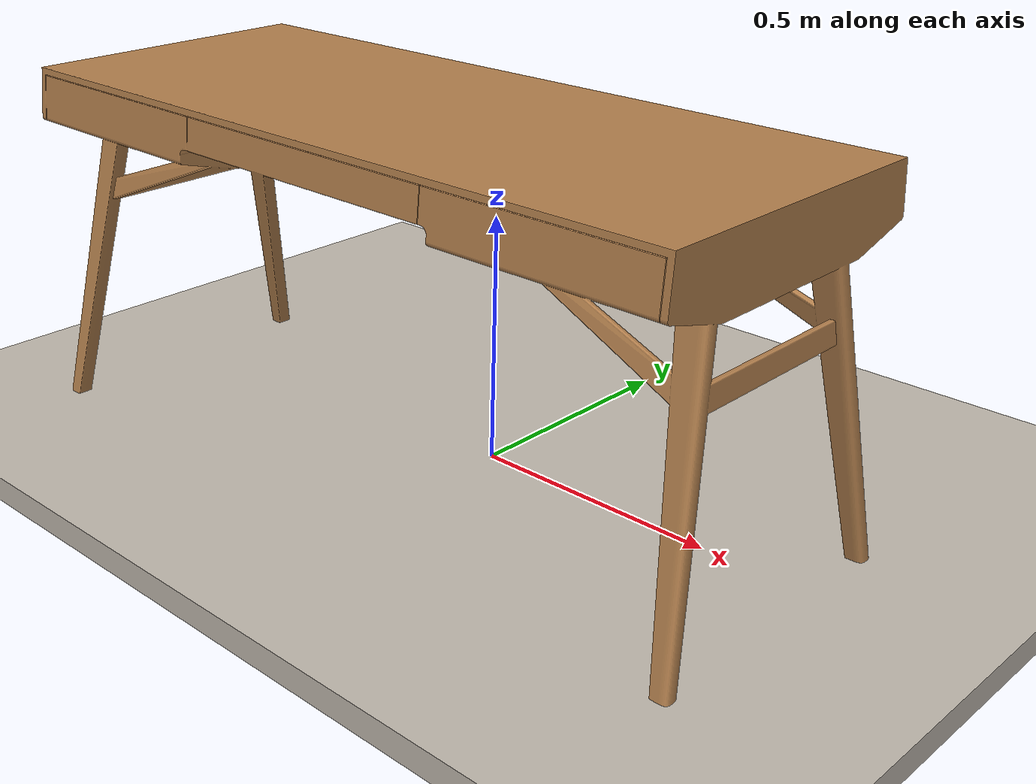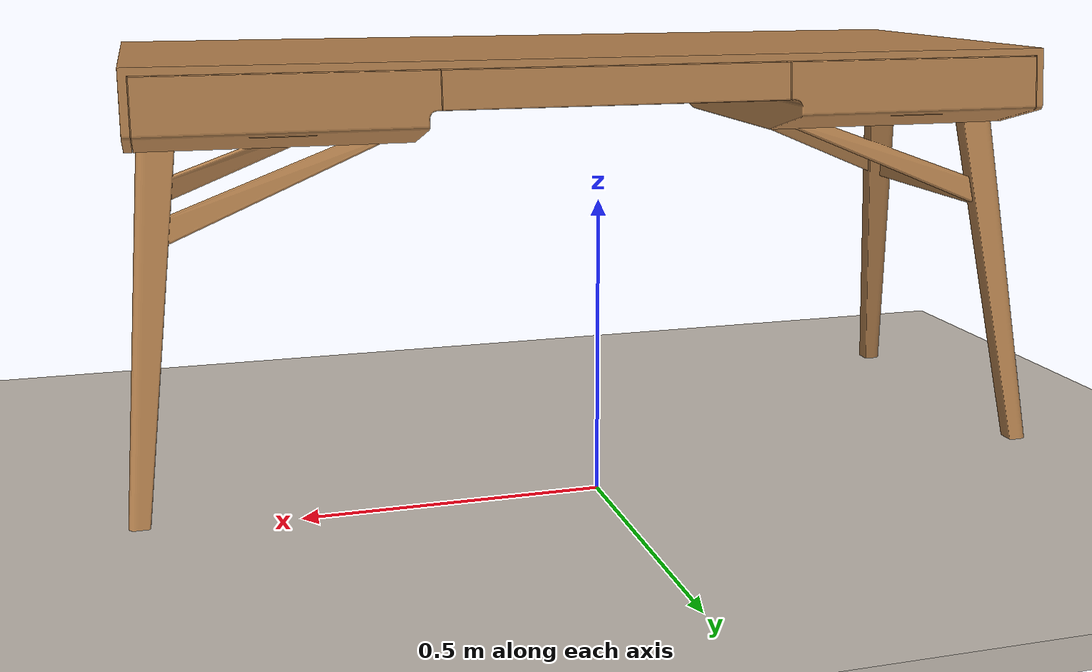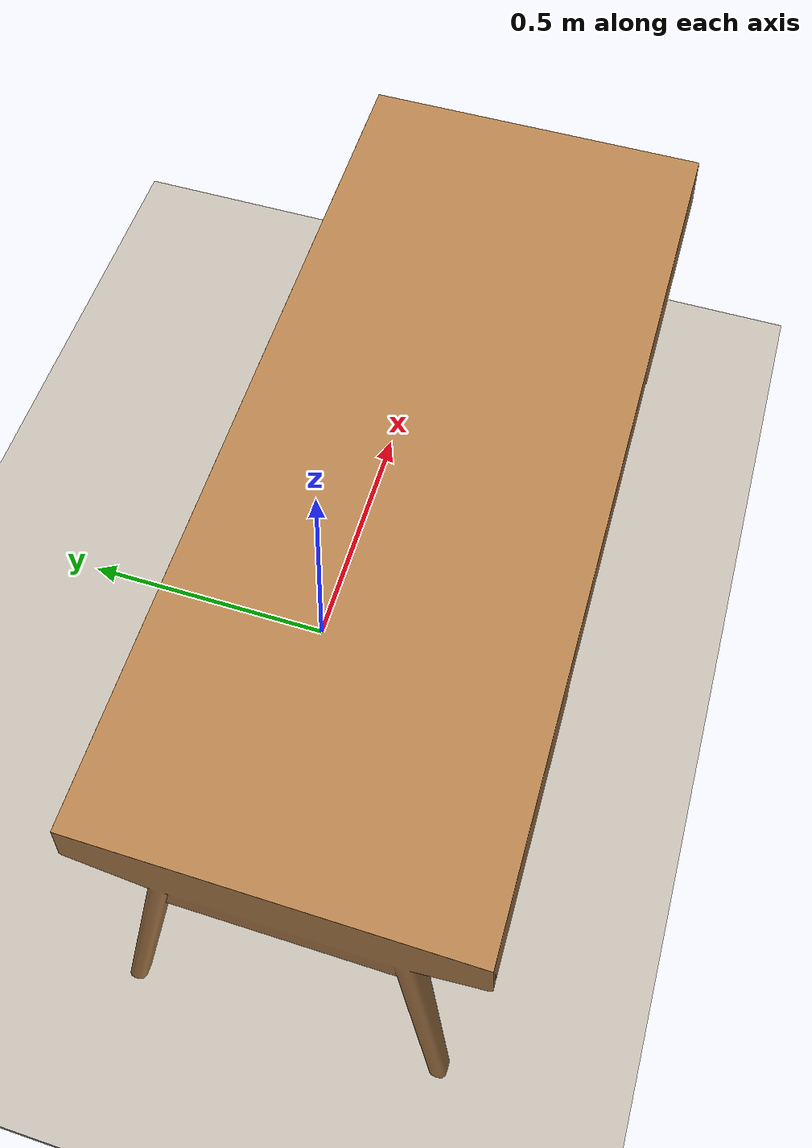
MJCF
<mujoco model="scene">
  <default>
    <default class="visual">
      <geom group="2" type="mesh" contype="0" conaffinity="0"/>
    </default>
    <default class="collision">
      <geom group="3" type="mesh"/>
    </default>
  </default>
  <asset>
    <texture type="2d" name="F02_Wood_R_XL_BaseColor" file="F02_Wood_R_XL_BaseColor.png"/>
    <material name="01_-_Default" texture="F02_Wood_R_XL_BaseColor" specular="1.0" shininess="0.199999995"/>
    <texture type="2d" name="dimian_BaseColor" file="dimian_BaseColor.png"/>
    <material name="plane" texture="dimian_BaseColor" specular="0.5" shininess="0.25"/>
    <mesh name="scene_0" file="/home/chengjiabao/test_new/Asset/scenes/table_scene/scene_0.obj"/>
    <mesh name="scene_1" file="/home/chengjiabao/test_new/Asset/scenes/table_scene/scene_1.obj"/>
  </asset>
  <worldbody>
    <body name="floor">
      <geom name="floor" mesh="scene_0" material="plane" class="visual"/>
      <geom mesh="scene_0" class="collision"/>
    </body>

    <light name="light" diffuse=".8 .8 .8" dir="0 -.15 -1" directional="false" pos="1 1 4.0" specular="0.3 0.3 0.3" castshadow="false"/>
    <body name="table">
      <geom mesh="scene_1" material="01_-_Default" class="visual" pos="0 0 0"/>
      <geom mesh="scene_1" class="collision"/>
      <site pos="0 0 0.4" name="table_top" size="0.001 0.001 0.001" rgba="0 0 0 0"/>
    </body>
    <!-- front view -->
    <camera mode="fixed" name="frontview" pos="3 0.8 1.45" quat="0.56 0.43 0.43 0.56"/>
    <!-- bird view -->
    <camera mode="fixed" name="birdview" pos="-0.2 0 3.0" quat="0.7071 0 0 0.7071"/>
    <!-- agent view -->
    <camera mode="fixed" name="agentview" pos="0.5 0 1.35" quat="0.653 0.271 0.271 0.653"/>
    <!-- side view -->
    <camera mode="fixed" name="sideview" pos="-0.05651774593317116 1.2761224129427358 1.4879572214102434" quat="0.009905065491771751 0.006877963156909582 0.5912228352893879 0.806418094001364" />
  </worldbody>
</mujoco>
